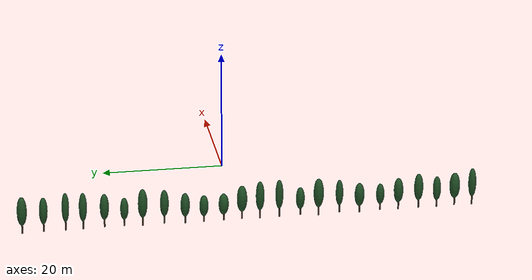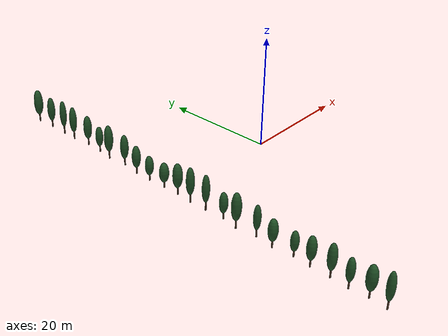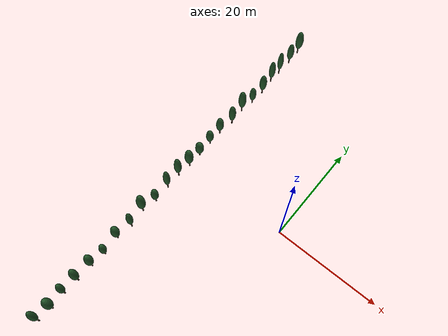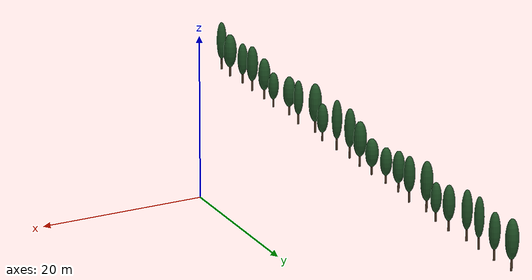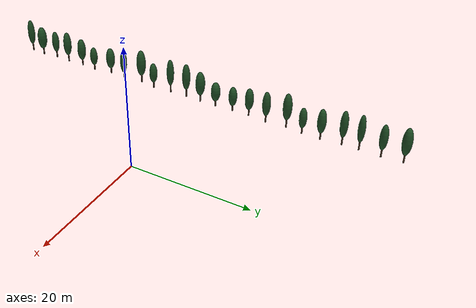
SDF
<sdf version="1.9">
 <world name="orchard_10x41">
  <model name="windbreak_W">
   <static>true</static>
   <link name="link">
    <visual name="wb_trunk_1">
     <pose>-21.436 -38.000 0.718 0.0000 0.0000 0.0000</pose>
     <geometry><cylinder><radius>0.1200</radius><length>1.3942</length></cylinder></geometry>
     <material>
      <ambient>0.280 0.200 0.130 1</ambient>
      <diffuse>0.308 0.220 0.143 1</diffuse>
      <specular>0.084 0.060 0.039 1</specular>
     </material>
     <plugin filename="gz-sim-label-system" name="gz::sim::systems::Label"><label>63</label></plugin>
    </visual>
    <visual name="wb_crown_2">
     <pose>-21.436 -38.000 3.886 0.0000 0.0000 0.0000</pose>
     <geometry><ellipsoid><radii>0.6340 0.6340 2.4715</radii></ellipsoid></geometry>
     <material>
      <ambient>0.120 0.300 0.140 1</ambient>
      <diffuse>0.132 0.330 0.154 1</diffuse>
      <specular>0.036 0.090 0.042 1</specular>
     </material>
     <plugin filename="gz-sim-label-system" name="gz::sim::systems::Label"><label>63</label></plugin>
    </visual>
    <visual name="wb_trunk_3">
     <pose>-21.223 -35.149 0.640 0.0000 0.0000 0.0000</pose>
     <geometry><cylinder><radius>0.1200</radius><length>1.2384</length></cylinder></geometry>
     <material>
      <ambient>0.280 0.200 0.130 1</ambient>
      <diffuse>0.308 0.220 0.143 1</diffuse>
      <specular>0.084 0.060 0.039 1</specular>
     </material>
     <plugin filename="gz-sim-label-system" name="gz::sim::systems::Label"><label>63</label></plugin>
    </visual>
    <visual name="wb_crown_4">
     <pose>-21.223 -35.149 3.454 0.0000 0.0000 0.0000</pose>
     <geometry><ellipsoid><radii>0.8411 0.8411 2.1953</radii></ellipsoid></geometry>
     <material>
      <ambient>0.120 0.300 0.140 1</ambient>
      <diffuse>0.132 0.330 0.154 1</diffuse>
      <specular>0.036 0.090 0.042 1</specular>
     </material>
     <plugin filename="gz-sim-label-system" name="gz::sim::systems::Label"><label>63</label></plugin>
    </visual>
    <visual name="wb_trunk_5">
     <pose>-21.514 -32.138 0.603 0.0000 0.0000 0.0000</pose>
     <geometry><cylinder><radius>0.1200</radius><length>1.1705</length></cylinder></geometry>
     <material>
      <ambient>0.280 0.200 0.130 1</ambient>
      <diffuse>0.308 0.220 0.143 1</diffuse>
      <specular>0.084 0.060 0.039 1</specular>
     </material>
     <plugin filename="gz-sim-label-system" name="gz::sim::systems::Label"><label>63</label></plugin>
    </visual>
    <visual name="wb_crown_6">
     <pose>-21.514 -32.138 3.263 0.0000 0.0000 0.0000</pose>
     <geometry><ellipsoid><radii>0.6433 0.6433 2.0750</radii></ellipsoid></geometry>
     <material>
      <ambient>0.120 0.300 0.140 1</ambient>
      <diffuse>0.132 0.330 0.154 1</diffuse>
      <specular>0.036 0.090 0.042 1</specular>
     </material>
     <plugin filename="gz-sim-label-system" name="gz::sim::systems::Label"><label>63</label></plugin>
    </visual>
    <visual name="wb_trunk_7">
     <pose>-21.382 -29.141 0.669 0.0000 0.0000 0.0000</pose>
     <geometry><cylinder><radius>0.1200</radius><length>1.3041</length></cylinder></geometry>
     <material>
      <ambient>0.280 0.200 0.130 1</ambient>
      <diffuse>0.308 0.220 0.143 1</diffuse>
      <specular>0.084 0.060 0.039 1</specular>
     </material>
     <plugin filename="gz-sim-label-system" name="gz::sim::systems::Label"><label>63</label></plugin>
    </visual>
    <visual name="wb_crown_8">
     <pose>-21.382 -29.141 3.633 0.0000 0.0000 0.0000</pose>
     <geometry><ellipsoid><radii>0.7249 0.7249 2.3119</radii></ellipsoid></geometry>
     <material>
      <ambient>0.120 0.300 0.140 1</ambient>
      <diffuse>0.132 0.330 0.154 1</diffuse>
      <specular>0.036 0.090 0.042 1</specular>
     </material>
     <plugin filename="gz-sim-label-system" name="gz::sim::systems::Label"><label>63</label></plugin>
    </visual>
    <visual name="wb_trunk_9">
     <pose>-21.395 -25.814 0.613 0.0000 0.0000 0.0000</pose>
     <geometry><cylinder><radius>0.1200</radius><length>1.1863</length></cylinder></geometry>
     <material>
      <ambient>0.280 0.200 0.130 1</ambient>
      <diffuse>0.308 0.220 0.143 1</diffuse>
      <specular>0.084 0.060 0.039 1</specular>
     </material>
     <plugin filename="gz-sim-label-system" name="gz::sim::systems::Label"><label>63</label></plugin>
    </visual>
    <visual name="wb_crown_10">
     <pose>-21.395 -25.814 3.309 0.0000 0.0000 0.0000</pose>
     <geometry><ellipsoid><radii>0.7577 0.7577 2.1029</radii></ellipsoid></geometry>
     <material>
      <ambient>0.120 0.300 0.140 1</ambient>
      <diffuse>0.132 0.330 0.154 1</diffuse>
      <specular>0.036 0.090 0.042 1</specular>
     </material>
     <plugin filename="gz-sim-label-system" name="gz::sim::systems::Label"><label>63</label></plugin>
    </visual>
    <visual name="wb_trunk_11">
     <pose>-21.177 -22.850 0.518 0.0000 0.0000 0.0000</pose>
     <geometry><cylinder><radius>0.1200</radius><length>0.9960</length></cylinder></geometry>
     <material>
      <ambient>0.280 0.200 0.130 1</ambient>
      <diffuse>0.308 0.220 0.143 1</diffuse>
      <specular>0.084 0.060 0.039 1</specular>
     </material>
     <plugin filename="gz-sim-label-system" name="gz::sim::systems::Label"><label>63</label></plugin>
    </visual>
    <visual name="wb_crown_12">
     <pose>-21.177 -22.850 2.782 0.0000 0.0000 0.0000</pose>
     <geometry><ellipsoid><radii>0.6548 0.6548 1.7657</radii></ellipsoid></geometry>
     <material>
      <ambient>0.120 0.300 0.140 1</ambient>
      <diffuse>0.132 0.330 0.154 1</diffuse>
      <specular>0.036 0.090 0.042 1</specular>
     </material>
     <plugin filename="gz-sim-label-system" name="gz::sim::systems::Label"><label>63</label></plugin>
    </visual>
    <visual name="wb_trunk_13">
     <pose>-21.607 -19.353 0.576 0.0000 0.0000 0.0000</pose>
     <geometry><cylinder><radius>0.1200</radius><length>1.1122</length></cylinder></geometry>
     <material>
      <ambient>0.280 0.200 0.130 1</ambient>
      <diffuse>0.308 0.220 0.143 1</diffuse>
      <specular>0.084 0.060 0.039 1</specular>
     </material>
     <plugin filename="gz-sim-label-system" name="gz::sim::systems::Label"><label>63</label></plugin>
    </visual>
    <visual name="wb_crown_14">
     <pose>-21.607 -19.353 3.104 0.0000 0.0000 0.0000</pose>
     <geometry><ellipsoid><radii>0.7809 0.7809 1.9717</radii></ellipsoid></geometry>
     <material>
      <ambient>0.120 0.300 0.140 1</ambient>
      <diffuse>0.132 0.330 0.154 1</diffuse>
      <specular>0.036 0.090 0.042 1</specular>
     </material>
     <plugin filename="gz-sim-label-system" name="gz::sim::systems::Label"><label>63</label></plugin>
    </visual>
    <visual name="wb_trunk_15">
     <pose>-21.202 -16.130 0.642 0.0000 0.0000 0.0000</pose>
     <geometry><cylinder><radius>0.1200</radius><length>1.2467</length></cylinder></geometry>
     <material>
      <ambient>0.280 0.200 0.130 1</ambient>
      <diffuse>0.308 0.220 0.143 1</diffuse>
      <specular>0.084 0.060 0.039 1</specular>
     </material>
     <plugin filename="gz-sim-label-system" name="gz::sim::systems::Label"><label>63</label></plugin>
    </visual>
    <visual name="wb_crown_16">
     <pose>-21.202 -16.130 3.476 0.0000 0.0000 0.0000</pose>
     <geometry><ellipsoid><radii>0.5987 0.5987 2.2101</radii></ellipsoid></geometry>
     <material>
      <ambient>0.120 0.300 0.140 1</ambient>
      <diffuse>0.132 0.330 0.154 1</diffuse>
      <specular>0.036 0.090 0.042 1</specular>
     </material>
     <plugin filename="gz-sim-label-system" name="gz::sim::systems::Label"><label>63</label></plugin>
    </visual>
    <visual name="wb_trunk_17">
     <pose>-21.714 -12.631 0.717 0.0000 0.0000 0.0000</pose>
     <geometry><cylinder><radius>0.1200</radius><length>1.3988</length></cylinder></geometry>
     <material>
      <ambient>0.280 0.200 0.130 1</ambient>
      <diffuse>0.308 0.220 0.143 1</diffuse>
      <specular>0.084 0.060 0.039 1</specular>
     </material>
     <plugin filename="gz-sim-label-system" name="gz::sim::systems::Label"><label>63</label></plugin>
    </visual>
    <visual name="wb_crown_18">
     <pose>-21.714 -12.631 3.896 0.0000 0.0000 0.0000</pose>
     <geometry><ellipsoid><radii>0.8133 0.8133 2.4796</radii></ellipsoid></geometry>
     <material>
      <ambient>0.120 0.300 0.140 1</ambient>
      <diffuse>0.132 0.330 0.154 1</diffuse>
      <specular>0.036 0.090 0.042 1</specular>
     </material>
     <plugin filename="gz-sim-label-system" name="gz::sim::systems::Label"><label>63</label></plugin>
    </visual>
    <visual name="wb_trunk_19">
     <pose>-21.200 -9.724 0.545 0.0000 0.0000 0.0000</pose>
     <geometry><cylinder><radius>0.1200</radius><length>1.0564</length></cylinder></geometry>
     <material>
      <ambient>0.280 0.200 0.130 1</ambient>
      <diffuse>0.308 0.220 0.143 1</diffuse>
      <specular>0.084 0.060 0.039 1</specular>
     </material>
     <plugin filename="gz-sim-label-system" name="gz::sim::systems::Label"><label>63</label></plugin>
    </visual>
    <visual name="wb_crown_20">
     <pose>-21.200 -9.724 2.946 0.0000 0.0000 0.0000</pose>
     <geometry><ellipsoid><radii>0.6923 0.6923 1.8727</radii></ellipsoid></geometry>
     <material>
      <ambient>0.120 0.300 0.140 1</ambient>
      <diffuse>0.132 0.330 0.154 1</diffuse>
      <specular>0.036 0.090 0.042 1</specular>
     </material>
     <plugin filename="gz-sim-label-system" name="gz::sim::systems::Label"><label>63</label></plugin>
    </visual>
    <visual name="wb_trunk_21">
     <pose>-21.351 -6.266 0.725 0.0000 0.0000 0.0000</pose>
     <geometry><cylinder><radius>0.1200</radius><length>1.4153</length></cylinder></geometry>
     <material>
      <ambient>0.280 0.200 0.130 1</ambient>
      <diffuse>0.308 0.220 0.143 1</diffuse>
      <specular>0.084 0.060 0.039 1</specular>
     </material>
     <plugin filename="gz-sim-label-system" name="gz::sim::systems::Label"><label>63</label></plugin>
    </visual>
    <visual name="wb_crown_22">
     <pose>-21.351 -6.266 3.941 0.0000 0.0000 0.0000</pose>
     <geometry><ellipsoid><radii>0.6302 0.6302 2.5090</radii></ellipsoid></geometry>
     <material>
      <ambient>0.120 0.300 0.140 1</ambient>
      <diffuse>0.132 0.330 0.154 1</diffuse>
      <specular>0.036 0.090 0.042 1</specular>
     </material>
     <plugin filename="gz-sim-label-system" name="gz::sim::systems::Label"><label>63</label></plugin>
    </visual>
    <visual name="wb_trunk_23">
     <pose>-21.457 -3.114 0.719 0.0000 0.0000 0.0000</pose>
     <geometry><cylinder><radius>0.1200</radius><length>1.4044</length></cylinder></geometry>
     <material>
      <ambient>0.280 0.200 0.130 1</ambient>
      <diffuse>0.308 0.220 0.143 1</diffuse>
      <specular>0.084 0.060 0.039 1</specular>
     </material>
     <plugin filename="gz-sim-label-system" name="gz::sim::systems::Label"><label>63</label></plugin>
    </visual>
    <visual name="wb_crown_24">
     <pose>-21.457 -3.114 3.910 0.0000 0.0000 0.0000</pose>
     <geometry><ellipsoid><radii>0.6930 0.6930 2.4896</radii></ellipsoid></geometry>
     <material>
      <ambient>0.120 0.300 0.140 1</ambient>
      <diffuse>0.132 0.330 0.154 1</diffuse>
      <specular>0.036 0.090 0.042 1</specular>
     </material>
     <plugin filename="gz-sim-label-system" name="gz::sim::systems::Label"><label>63</label></plugin>
    </visual>
    <visual name="wb_trunk_25">
     <pose>-21.269 -0.204 0.649 0.0000 0.0000 0.0000</pose>
     <geometry><cylinder><radius>0.1200</radius><length>1.2674</length></cylinder></geometry>
     <material>
      <ambient>0.280 0.200 0.130 1</ambient>
      <diffuse>0.308 0.220 0.143 1</diffuse>
      <specular>0.084 0.060 0.039 1</specular>
     </material>
     <plugin filename="gz-sim-label-system" name="gz::sim::systems::Label"><label>63</label></plugin>
    </visual>
    <visual name="wb_crown_26">
     <pose>-21.269 -0.204 3.529 0.0000 0.0000 0.0000</pose>
     <geometry><ellipsoid><radii>0.8201 0.8201 2.2468</radii></ellipsoid></geometry>
     <material>
      <ambient>0.120 0.300 0.140 1</ambient>
      <diffuse>0.132 0.330 0.154 1</diffuse>
      <specular>0.036 0.090 0.042 1</specular>
     </material>
     <plugin filename="gz-sim-label-system" name="gz::sim::systems::Label"><label>63</label></plugin>
    </visual>
    <visual name="wb_trunk_27">
     <pose>-21.278 2.785 0.519 0.0000 0.0000 0.0000</pose>
     <geometry><cylinder><radius>0.1200</radius><length>1.0079</length></cylinder></geometry>
     <material>
      <ambient>0.280 0.200 0.130 1</ambient>
      <diffuse>0.308 0.220 0.143 1</diffuse>
      <specular>0.084 0.060 0.039 1</specular>
     </material>
     <plugin filename="gz-sim-label-system" name="gz::sim::systems::Label"><label>63</label></plugin>
    </visual>
    <visual name="wb_crown_28">
     <pose>-21.278 2.785 2.809 0.0000 0.0000 0.0000</pose>
     <geometry><ellipsoid><radii>0.8026 0.8026 1.7867</radii></ellipsoid></geometry>
     <material>
      <ambient>0.120 0.300 0.140 1</ambient>
      <diffuse>0.132 0.330 0.154 1</diffuse>
      <specular>0.036 0.090 0.042 1</specular>
     </material>
     <plugin filename="gz-sim-label-system" name="gz::sim::systems::Label"><label>63</label></plugin>
    </visual>
    <visual name="wb_trunk_29">
     <pose>-21.433 6.005 0.517 0.0000 0.0000 0.0000</pose>
     <geometry><cylinder><radius>0.1200</radius><length>1.0051</length></cylinder></geometry>
     <material>
      <ambient>0.280 0.200 0.130 1</ambient>
      <diffuse>0.308 0.220 0.143 1</diffuse>
      <specular>0.084 0.060 0.039 1</specular>
     </material>
     <plugin filename="gz-sim-label-system" name="gz::sim::systems::Label"><label>63</label></plugin>
    </visual>
    <visual name="wb_crown_30">
     <pose>-21.433 6.005 2.801 0.0000 0.0000 0.0000</pose>
     <geometry><ellipsoid><radii>0.7118 0.7118 1.7817</radii></ellipsoid></geometry>
     <material>
      <ambient>0.120 0.300 0.140 1</ambient>
      <diffuse>0.132 0.330 0.154 1</diffuse>
      <specular>0.036 0.090 0.042 1</specular>
     </material>
     <plugin filename="gz-sim-label-system" name="gz::sim::systems::Label"><label>63</label></plugin>
    </visual>
    <visual name="wb_trunk_31">
     <pose>-21.454 9.053 0.584 0.0000 0.0000 0.0000</pose>
     <geometry><cylinder><radius>0.1200</radius><length>1.1417</length></cylinder></geometry>
     <material>
      <ambient>0.280 0.200 0.130 1</ambient>
      <diffuse>0.308 0.220 0.143 1</diffuse>
      <specular>0.084 0.060 0.039 1</specular>
     </material>
     <plugin filename="gz-sim-label-system" name="gz::sim::systems::Label"><label>63</label></plugin>
    </visual>
    <visual name="wb_crown_32">
     <pose>-21.454 9.053 3.179 0.0000 0.0000 0.0000</pose>
     <geometry><ellipsoid><radii>0.7311 0.7311 2.0240</radii></ellipsoid></geometry>
     <material>
      <ambient>0.120 0.300 0.140 1</ambient>
      <diffuse>0.132 0.330 0.154 1</diffuse>
      <specular>0.036 0.090 0.042 1</specular>
     </material>
     <plugin filename="gz-sim-label-system" name="gz::sim::systems::Label"><label>63</label></plugin>
    </visual>
    <visual name="wb_trunk_33">
     <pose>-21.054 12.357 0.646 0.0000 0.0000 0.0000</pose>
     <geometry><cylinder><radius>0.1200</radius><length>1.2713</length></cylinder></geometry>
     <material>
      <ambient>0.280 0.200 0.130 1</ambient>
      <diffuse>0.308 0.220 0.143 1</diffuse>
      <specular>0.084 0.060 0.039 1</specular>
     </material>
     <plugin filename="gz-sim-label-system" name="gz::sim::systems::Label"><label>63</label></plugin>
    </visual>
    <visual name="wb_crown_34">
     <pose>-21.054 12.357 3.535 0.0000 0.0000 0.0000</pose>
     <geometry><ellipsoid><radii>0.6883 0.6883 2.2536</radii></ellipsoid></geometry>
     <material>
      <ambient>0.120 0.300 0.140 1</ambient>
      <diffuse>0.132 0.330 0.154 1</diffuse>
      <specular>0.036 0.090 0.042 1</specular>
     </material>
     <plugin filename="gz-sim-label-system" name="gz::sim::systems::Label"><label>63</label></plugin>
    </visual>
    <visual name="wb_trunk_35">
     <pose>-21.399 15.901 0.705 0.0000 0.0000 0.0000</pose>
     <geometry><cylinder><radius>0.1200</radius><length>1.3966</length></cylinder></geometry>
     <material>
      <ambient>0.280 0.200 0.130 1</ambient>
      <diffuse>0.308 0.220 0.143 1</diffuse>
      <specular>0.084 0.060 0.039 1</specular>
     </material>
     <plugin filename="gz-sim-label-system" name="gz::sim::systems::Label"><label>63</label></plugin>
    </visual>
    <visual name="wb_crown_36">
     <pose>-21.399 15.901 3.879 0.0000 0.0000 0.0000</pose>
     <geometry><ellipsoid><radii>0.7571 0.7571 2.4758</radii></ellipsoid></geometry>
     <material>
      <ambient>0.120 0.300 0.140 1</ambient>
      <diffuse>0.132 0.330 0.154 1</diffuse>
      <specular>0.036 0.090 0.042 1</specular>
     </material>
     <plugin filename="gz-sim-label-system" name="gz::sim::systems::Label"><label>63</label></plugin>
    </visual>
    <visual name="wb_trunk_37">
     <pose>-20.996 18.817 0.536 0.0000 0.0000 0.0000</pose>
     <geometry><cylinder><radius>0.1200</radius><length>1.0638</length></cylinder></geometry>
     <material>
      <ambient>0.280 0.200 0.130 1</ambient>
      <diffuse>0.308 0.220 0.143 1</diffuse>
      <specular>0.084 0.060 0.039 1</specular>
     </material>
     <plugin filename="gz-sim-label-system" name="gz::sim::systems::Label"><label>63</label></plugin>
    </visual>
    <visual name="wb_crown_38">
     <pose>-20.996 18.817 2.954 0.0000 0.0000 0.0000</pose>
     <geometry><ellipsoid><radii>0.6474 0.6474 1.8859</radii></ellipsoid></geometry>
     <material>
      <ambient>0.120 0.300 0.140 1</ambient>
      <diffuse>0.132 0.330 0.154 1</diffuse>
      <specular>0.036 0.090 0.042 1</specular>
     </material>
     <plugin filename="gz-sim-label-system" name="gz::sim::systems::Label"><label>63</label></plugin>
    </visual>
    <visual name="wb_trunk_39">
     <pose>-20.891 22.005 0.629 0.0000 0.0000 0.0000</pose>
     <geometry><cylinder><radius>0.1200</radius><length>1.2493</length></cylinder></geometry>
     <material>
      <ambient>0.280 0.200 0.130 1</ambient>
      <diffuse>0.308 0.220 0.143 1</diffuse>
      <specular>0.084 0.060 0.039 1</specular>
     </material>
     <plugin filename="gz-sim-label-system" name="gz::sim::systems::Label"><label>63</label></plugin>
    </visual>
    <visual name="wb_crown_40">
     <pose>-20.891 22.005 3.468 0.0000 0.0000 0.0000</pose>
     <geometry><ellipsoid><radii>0.7208 0.7208 2.2146</radii></ellipsoid></geometry>
     <material>
      <ambient>0.120 0.300 0.140 1</ambient>
      <diffuse>0.132 0.330 0.154 1</diffuse>
      <specular>0.036 0.090 0.042 1</specular>
     </material>
     <plugin filename="gz-sim-label-system" name="gz::sim::systems::Label"><label>63</label></plugin>
    </visual>
    <visual name="wb_trunk_41">
     <pose>-21.275 25.482 0.695 0.0000 0.0000 0.0000</pose>
     <geometry><cylinder><radius>0.1200</radius><length>1.3826</length></cylinder></geometry>
     <material>
      <ambient>0.280 0.200 0.130 1</ambient>
      <diffuse>0.308 0.220 0.143 1</diffuse>
      <specular>0.084 0.060 0.039 1</specular>
     </material>
     <plugin filename="gz-sim-label-system" name="gz::sim::systems::Label"><label>63</label></plugin>
    </visual>
    <visual name="wb_crown_42">
     <pose>-21.275 25.482 3.838 0.0000 0.0000 0.0000</pose>
     <geometry><ellipsoid><radii>0.6390 0.6390 2.4509</radii></ellipsoid></geometry>
     <material>
      <ambient>0.120 0.300 0.140 1</ambient>
      <diffuse>0.132 0.330 0.154 1</diffuse>
      <specular>0.036 0.090 0.042 1</specular>
     </material>
     <plugin filename="gz-sim-label-system" name="gz::sim::systems::Label"><label>63</label></plugin>
    </visual>
    <visual name="wb_trunk_43">
     <pose>-21.257 28.285 0.717 0.0000 0.0000 0.0000</pose>
     <geometry><cylinder><radius>0.1200</radius><length>1.4248</length></cylinder></geometry>
     <material>
      <ambient>0.280 0.200 0.130 1</ambient>
      <diffuse>0.308 0.220 0.143 1</diffuse>
      <specular>0.084 0.060 0.039 1</specular>
     </material>
     <plugin filename="gz-sim-label-system" name="gz::sim::systems::Label"><label>63</label></plugin>
    </visual>
    <visual name="wb_crown_44">
     <pose>-21.257 28.285 3.956 0.0000 0.0000 0.0000</pose>
     <geometry><ellipsoid><radii>0.5833 0.5833 2.5258</radii></ellipsoid></geometry>
     <material>
      <ambient>0.120 0.300 0.140 1</ambient>
      <diffuse>0.132 0.330 0.154 1</diffuse>
      <specular>0.036 0.090 0.042 1</specular>
     </material>
     <plugin filename="gz-sim-label-system" name="gz::sim::systems::Label"><label>63</label></plugin>
    </visual>
    <visual name="wb_trunk_45">
     <pose>-21.228 31.807 0.653 0.0000 0.0000 0.0000</pose>
     <geometry><cylinder><radius>0.1200</radius><length>1.2963</length></cylinder></geometry>
     <material>
      <ambient>0.280 0.200 0.130 1</ambient>
      <diffuse>0.308 0.220 0.143 1</diffuse>
      <specular>0.084 0.060 0.039 1</specular>
     </material>
     <plugin filename="gz-sim-label-system" name="gz::sim::systems::Label"><label>63</label></plugin>
    </visual>
    <visual name="wb_crown_46">
     <pose>-21.228 31.807 3.599 0.0000 0.0000 0.0000</pose>
     <geometry><ellipsoid><radii>0.6672 0.6672 2.2980</radii></ellipsoid></geometry>
     <material>
      <ambient>0.120 0.300 0.140 1</ambient>
      <diffuse>0.132 0.330 0.154 1</diffuse>
      <specular>0.036 0.090 0.042 1</specular>
     </material>
     <plugin filename="gz-sim-label-system" name="gz::sim::systems::Label"><label>63</label></plugin>
    </visual>
    <visual name="wb_trunk_47">
     <pose>-21.457 35.257 0.700 0.0000 0.0000 0.0000</pose>
     <geometry><cylinder><radius>0.1200</radius><length>1.3884</length></cylinder></geometry>
     <material>
      <ambient>0.280 0.200 0.130 1</ambient>
      <diffuse>0.308 0.220 0.143 1</diffuse>
      <specular>0.084 0.060 0.039 1</specular>
     </material>
     <plugin filename="gz-sim-label-system" name="gz::sim::systems::Label"><label>63</label></plugin>
    </visual>
    <visual name="wb_crown_48">
     <pose>-21.457 35.257 3.855 0.0000 0.0000 0.0000</pose>
     <geometry><ellipsoid><radii>0.7917 0.7917 2.4612</radii></ellipsoid></geometry>
     <material>
      <ambient>0.120 0.300 0.140 1</ambient>
      <diffuse>0.132 0.330 0.154 1</diffuse>
      <specular>0.036 0.090 0.042 1</specular>
     </material>
     <plugin filename="gz-sim-label-system" name="gz::sim::systems::Label"><label>63</label></plugin>
    </visual>
    <collision name="c0">
     <pose>-21.436 -38.000 3.189 0.0000 0.0000 0.0000</pose>
     <geometry><cylinder><radius>0.1500</radius><length>6.3373</length></cylinder></geometry>
    </collision>
    <collision name="c1">
     <pose>-21.223 -35.149 2.835 0.0000 0.0000 0.0000</pose>
     <geometry><cylinder><radius>0.1500</radius><length>5.6290</length></cylinder></geometry>
    </collision>
    <collision name="c2">
     <pose>-21.514 -32.138 2.678 0.0000 0.0000 0.0000</pose>
     <geometry><cylinder><radius>0.1500</radius><length>5.3204</length></cylinder></geometry>
    </collision>
    <collision name="c3">
     <pose>-21.382 -29.141 2.981 0.0000 0.0000 0.0000</pose>
     <geometry><cylinder><radius>0.1500</radius><length>5.9279</length></cylinder></geometry>
    </collision>
    <collision name="c4">
     <pose>-21.395 -25.814 2.715 0.0000 0.0000 0.0000</pose>
     <geometry><cylinder><radius>0.1500</radius><length>5.3921</length></cylinder></geometry>
    </collision>
    <collision name="c5">
     <pose>-21.177 -22.850 2.284 0.0000 0.0000 0.0000</pose>
     <geometry><cylinder><radius>0.1500</radius><length>4.5273</length></cylinder></geometry>
    </collision>
    <collision name="c6">
     <pose>-21.607 -19.353 2.548 0.0000 0.0000 0.0000</pose>
     <geometry><cylinder><radius>0.1500</radius><length>5.0556</length></cylinder></geometry>
    </collision>
    <collision name="c7">
     <pose>-21.202 -16.130 2.852 0.0000 0.0000 0.0000</pose>
     <geometry><cylinder><radius>0.1500</radius><length>5.6669</length></cylinder></geometry>
    </collision>
    <collision name="c8">
     <pose>-21.714 -12.631 3.197 0.0000 0.0000 0.0000</pose>
     <geometry><cylinder><radius>0.1500</radius><length>6.3581</length></cylinder></geometry>
    </collision>
    <collision name="c9">
     <pose>-21.200 -9.724 2.418 0.0000 0.0000 0.0000</pose>
     <geometry><cylinder><radius>0.1500</radius><length>4.8019</length></cylinder></geometry>
    </collision>
    <collision name="c10">
     <pose>-21.351 -6.266 3.234 0.0000 0.0000 0.0000</pose>
     <geometry><cylinder><radius>0.1500</radius><length>6.4334</length></cylinder></geometry>
    </collision>
    <collision name="c11">
     <pose>-21.457 -3.114 3.208 0.0000 0.0000 0.0000</pose>
     <geometry><cylinder><radius>0.1500</radius><length>6.3836</length></cylinder></geometry>
    </collision>
    <collision name="c12">
     <pose>-21.269 -0.204 2.896 0.0000 0.0000 0.0000</pose>
     <geometry><cylinder><radius>0.1500</radius><length>5.7609</length></cylinder></geometry>
    </collision>
    <collision name="c13">
     <pose>-21.278 2.785 2.305 0.0000 0.0000 0.0000</pose>
     <geometry><cylinder><radius>0.1500</radius><length>4.5813</length></cylinder></geometry>
    </collision>
    <collision name="c14">
     <pose>-21.433 6.005 2.299 0.0000 0.0000 0.0000</pose>
     <geometry><cylinder><radius>0.1500</radius><length>4.5685</length></cylinder></geometry>
    </collision>
    <collision name="c15">
     <pose>-21.454 9.053 2.608 0.0000 0.0000 0.0000</pose>
     <geometry><cylinder><radius>0.1500</radius><length>5.1897</length></cylinder></geometry>
    </collision>
    <collision name="c16">
     <pose>-21.054 12.357 2.900 0.0000 0.0000 0.0000</pose>
     <geometry><cylinder><radius>0.1500</radius><length>5.7785</length></cylinder></geometry>
    </collision>
    <collision name="c17">
     <pose>-21.399 15.901 3.181 0.0000 0.0000 0.0000</pose>
     <geometry><cylinder><radius>0.1500</radius><length>6.3483</length></cylinder></geometry>
    </collision>
    <collision name="c18">
     <pose>-20.996 18.817 2.422 0.0000 0.0000 0.0000</pose>
     <geometry><cylinder><radius>0.1500</radius><length>4.8355</length></cylinder></geometry>
    </collision>
    <collision name="c19">
     <pose>-20.891 22.005 2.843 0.0000 0.0000 0.0000</pose>
     <geometry><cylinder><radius>0.1500</radius><length>5.6784</length></cylinder></geometry>
    </collision>
    <collision name="c20">
     <pose>-21.275 25.482 3.146 0.0000 0.0000 0.0000</pose>
     <geometry><cylinder><radius>0.1500</radius><length>6.2844</length></cylinder></geometry>
    </collision>
    <collision name="c21">
     <pose>-21.257 28.285 3.243 0.0000 0.0000 0.0000</pose>
     <geometry><cylinder><radius>0.1500</radius><length>6.4765</length></cylinder></geometry>
    </collision>
    <collision name="c22">
     <pose>-21.228 31.807 2.951 0.0000 0.0000 0.0000</pose>
     <geometry><cylinder><radius>0.1500</radius><length>5.8924</length></cylinder></geometry>
    </collision>
    <collision name="c23">
     <pose>-21.457 35.257 3.161 0.0000 0.0000 0.0000</pose>
     <geometry><cylinder><radius>0.1500</radius><length>6.3107</length></cylinder></geometry>
    </collision>
   </link>
  </model>
 </world>
</sdf>
